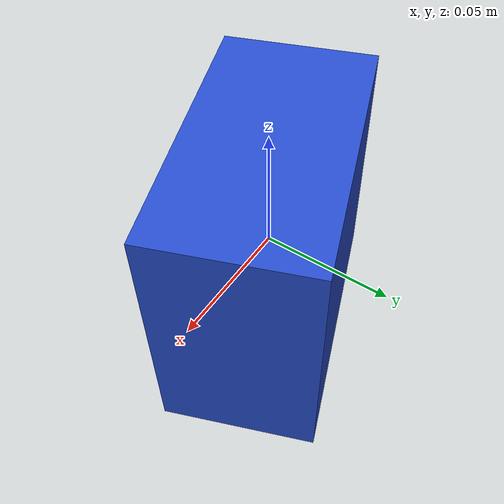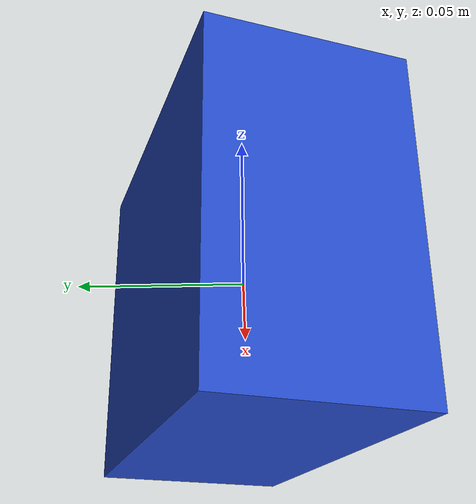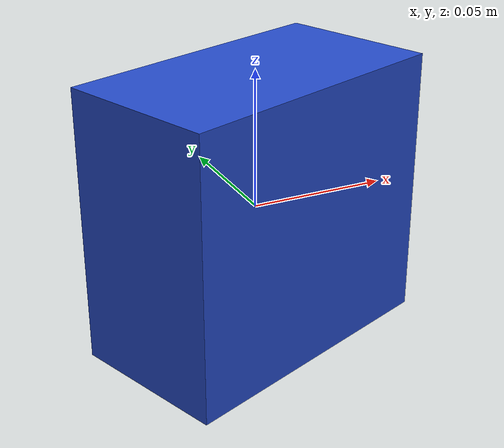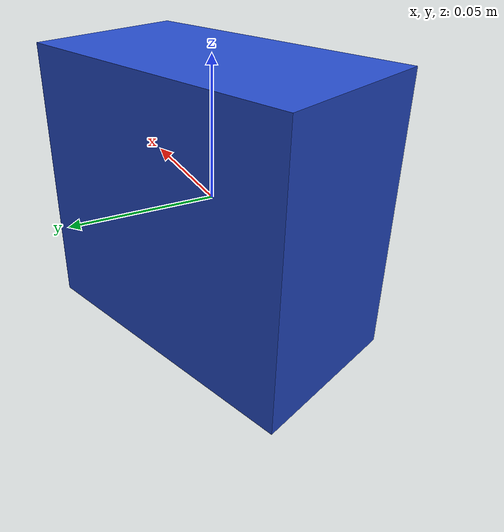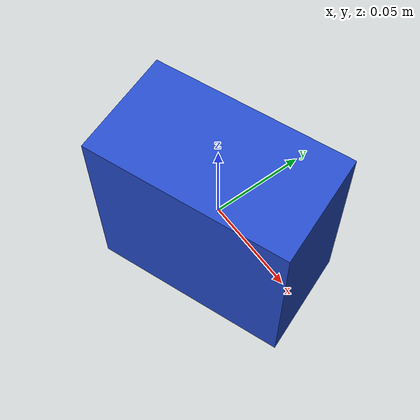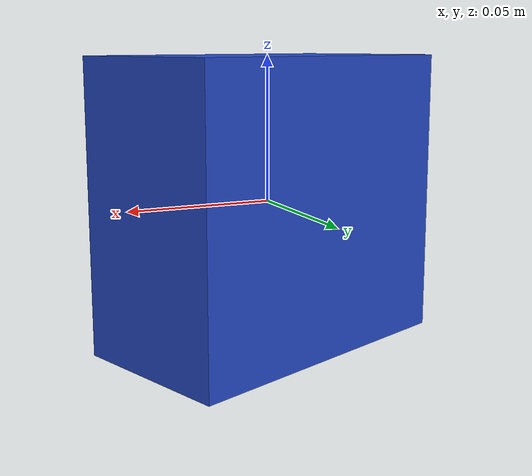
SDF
<sdf version="1.6"><model name="model_3"><static>true</static><link name="link"><pose>0 0 0 0 0 1.9290162168379263</pose><collision name="collision"><geometry><box><size>0.05880232163064713 0.1070490128635507 0.1</size></box></geometry></collision><visual name="visual"><geometry><box><size>0.05880232163064713 0.1070490128635507 0.1</size></box></geometry><material><script><name>Gazebo/Blue</name><uri>file://media/materials/scripts/gazebo.material</uri></script></material></visual></link></model></sdf>
